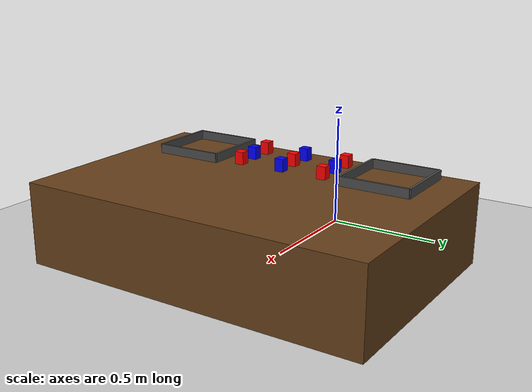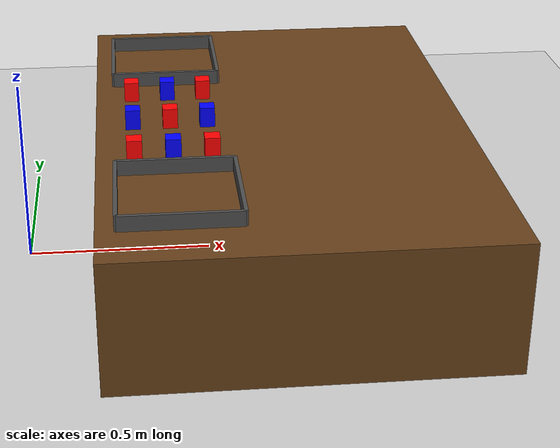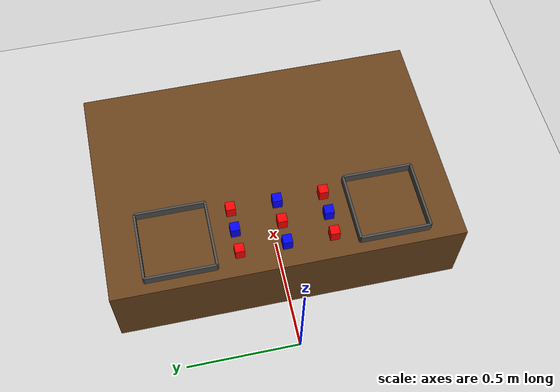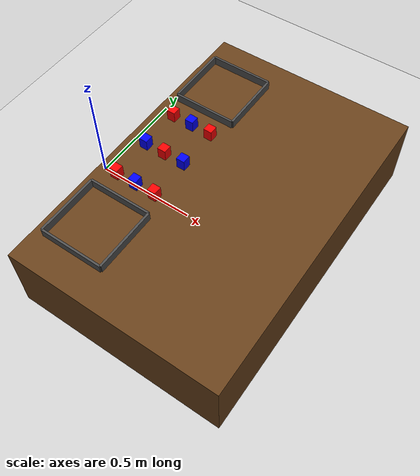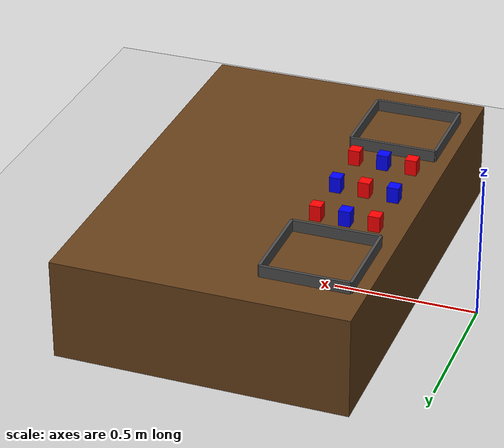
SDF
<?xml version="1.0" ?>
<sdf version="1.8">
  <world name="sorting_world">
    <plugin filename="libgz-sim-physics-system.so" name="gz::sim::systems::Physics" />
    <plugin filename="libgz-sim-user-commands-system.so" name="gz::sim::systems::UserCommands" />
    <plugin filename="libgz-sim-scene-broadcaster-system.so" name="gz::sim::systems::SceneBroadcaster" />
    <plugin filename="libgz-sim-sensors-system.so" name="gz::sim::systems::Sensors">
      <render_engine>ogre2</render_engine>
    </plugin>

    <physics name="1ms" type="ignored">
      <max_step_size>0.001</max_step_size>
      <real_time_factor>1.0</real_time_factor>
    </physics>

    <include>
      <uri>https://fuel.gazebosim.org/1.0/OpenRobotics/models/Sun</uri>
    </include>
    <include>
      <uri>https://fuel.gazebosim.org/1.0/OpenRobotics/models/Ground Plane</uri>
    </include>

    <!-- Table -->
    <model name="table">
      <static>true</static>
      <pose>0.7 0 0.2 0 0 0</pose>
      <link name="link">
        <collision name="collision">
          <geometry><box><size>1.0 1.5 0.35</size></box></geometry>
        </collision>
        <visual name="visual">
          <geometry><box><size>1.0 1.5 0.35</size></box></geometry>
          <material>
            <ambient>0.4 0.25 0.1 1</ambient>
            <diffuse>0.4 0.25 0.1 1</diffuse>
          </material>
        </visual>
      </link>
    </model>

    <!-- Containers -->
    <model name="red_container">
      <static>true</static>
      <pose>0.40 0.45 0.375 0 0 0</pose>
      <link name="link">
        <visual name="wall_front_v"><pose>0.15 0 0.02 0 0 0</pose><geometry><box><size>0.01 0.3 0.04</size></box></geometry><material><ambient>0.3 0.3 0.3 1</ambient><diffuse>0.3 0.3 0.3 1</diffuse></material></visual>
        <collision name="wall_front_c"><pose>0.15 0 0.02 0 0 0</pose><geometry><box><size>0.01 0.3 0.04</size></box></geometry></collision>
        <visual name="wall_back_v"><pose>-0.15 0 0.02 0 0 0</pose><geometry><box><size>0.01 0.3 0.04</size></box></geometry><material><ambient>0.3 0.3 0.3 1</ambient><diffuse>0.3 0.3 0.3 1</diffuse></material></visual>
        <collision name="wall_back_c"><pose>-0.15 0 0.02 0 0 0</pose><geometry><box><size>0.01 0.3 0.04</size></box></geometry></collision>
        <visual name="wall_left_v"><pose>0 0.15 0.02 0 0 0</pose><geometry><box><size>0.3 0.01 0.04</size></box></geometry><material><ambient>0.3 0.3 0.3 1</ambient><diffuse>0.3 0.3 0.3 1</diffuse></material></visual>
        <collision name="wall_left_c"><pose>0 0.15 0.02 0 0 0</pose><geometry><box><size>0.3 0.01 0.04</size></box></geometry></collision>
        <visual name="wall_right_v"><pose>0 -0.15 0.02 0 0 0</pose><geometry><box><size>0.3 0.01 0.04</size></box></geometry><material><ambient>0.3 0.3 0.3 1</ambient><diffuse>0.3 0.3 0.3 1</diffuse></material></visual>
        <collision name="wall_right_c"><pose>0 -0.15 0.02 0 0 0</pose><geometry><box><size>0.3 0.01 0.04</size></box></geometry></collision>
      </link>
    </model>

    <model name="blue_container">
      <static>true</static>
      <pose>0.40 -0.45 0.375 0 0 0</pose>
      <link name="link">
        <visual name="wall_front_v"><pose>0.15 0 0.02 0 0 0</pose><geometry><box><size>0.01 0.3 0.04</size></box></geometry><material><ambient>0.3 0.3 0.3 1</ambient><diffuse>0.3 0.3 0.3 1</diffuse></material></visual>
        <collision name="wall_front_c"><pose>0.15 0 0.02 0 0 0</pose><geometry><box><size>0.01 0.3 0.04</size></box></geometry></collision>
        <visual name="wall_back_v"><pose>-0.15 0 0.02 0 0 0</pose><geometry><box><size>0.01 0.3 0.04</size></box></geometry><material><ambient>0.3 0.3 0.3 1</ambient><diffuse>0.3 0.3 0.3 1</diffuse></material></visual>
        <collision name="wall_back_c"><pose>-0.15 0 0.02 0 0 0</pose><geometry><box><size>0.01 0.3 0.04</size></box></geometry></collision>
        <visual name="wall_left_v"><pose>0 0.15 0.02 0 0 0</pose><geometry><box><size>0.3 0.01 0.04</size></box></geometry><material><ambient>0.3 0.3 0.3 1</ambient><diffuse>0.3 0.3 0.3 1</diffuse></material></visual>
        <collision name="wall_left_c"><pose>0 0.15 0.02 0 0 0</pose><geometry><box><size>0.3 0.01 0.04</size></box></geometry></collision>
        <visual name="wall_right_v"><pose>0 -0.15 0.02 0 0 0</pose><geometry><box><size>0.3 0.01 0.04</size></box></geometry><material><ambient>0.3 0.3 0.3 1</ambient><diffuse>0.3 0.3 0.3 1</diffuse></material></visual>
        <collision name="wall_right_c"><pose>0 -0.15 0.02 0 0 0</pose><geometry><box><size>0.3 0.01 0.04</size></box></geometry></collision>
      </link>
    </model>

    <!-- Row 1 (X=0.3) -->
    <model name="red_block1"><pose>0.3 -0.2 0.40 0 0 0</pose><link name="link"><inertial><mass>0.05</mass><inertia><ixx>0.000013</ixx><iyy>0.000013</iyy><izz>0.000013</izz></inertia></inertial><collision name="collision"><geometry><box><size>0.04 0.04 0.06</size></box></geometry></collision><visual name="visual"><geometry><box><size>0.04 0.04 0.06</size></box></geometry><material><ambient>1 0 0 1</ambient><diffuse>1 0 0 1</diffuse></material></visual></link></model>
    <model name="blue_block1"><pose>0.3 0 0.40 0 0 0</pose><link name="link"><inertial><mass>0.05</mass><inertia><ixx>0.000013</ixx><iyy>0.000013</iyy><izz>0.000013</izz></inertia></inertial><collision name="collision"><geometry><box><size>0.04 0.04 0.06</size></box></geometry></collision><visual name="visual"><geometry><box><size>0.04 0.04 0.06</size></box></geometry><material><ambient>0 0 1 1</ambient><diffuse>0 0 1 1</diffuse></material></visual></link></model>
    <model name="red_block2"><pose>0.3 0.2 0.40 0 0 0</pose><link name="link"><inertial><mass>0.05</mass><inertia><ixx>0.000013</ixx><iyy>0.000013</iyy><izz>0.000013</izz></inertia></inertial><collision name="collision"><geometry><box><size>0.04 0.04 0.06</size></box></geometry></collision><visual name="visual"><geometry><box><size>0.04 0.04 0.06</size></box></geometry><material><ambient>1 0 0 1</ambient><diffuse>1 0 0 1</diffuse></material></visual></link></model>

    <!-- Row 2 (X=0.4) -->
    <model name="blue_block2"><pose>0.4 -0.2 0.40 0 0 0</pose><link name="link"><inertial><mass>0.05</mass><inertia><ixx>0.000013</ixx><iyy>0.000013</iyy><izz>0.000013</izz></inertia></inertial><collision name="collision"><geometry><box><size>0.04 0.04 0.06</size></box></geometry></collision><visual name="visual"><geometry><box><size>0.04 0.04 0.06</size></box></geometry><material><ambient>0 0 1 1</ambient><diffuse>0 0 1 1</diffuse></material></visual></link></model>
    <model name="red_block3"><pose>0.4 0 0.40 0 0 0</pose><link name="link"><inertial><mass>0.05</mass><inertia><ixx>0.000013</ixx><iyy>0.000013</iyy><izz>0.000013</izz></inertia></inertial><collision name="collision"><geometry><box><size>0.04 0.04 0.06</size></box></geometry></collision><visual name="visual"><geometry><box><size>0.04 0.04 0.06</size></box></geometry><material><ambient>1 0 0 1</ambient><diffuse>1 0 0 1</diffuse></material></visual></link></model>
    <model name="blue_block3"><pose>0.4 0.2 0.40 0 0 0</pose><link name="link"><inertial><mass>0.05</mass><inertia><ixx>0.000013</ixx><iyy>0.000013</iyy><izz>0.000013</izz></inertia></inertial><collision name="collision"><geometry><box><size>0.04 0.04 0.06</size></box></geometry></collision><visual name="visual"><geometry><box><size>0.04 0.04 0.06</size></box></geometry><material><ambient>0 0 1 1</ambient><diffuse>0 0 1 1</diffuse></material></visual></link></model>

    <!-- Row 3 (X=0.5) -->
    <model name="red_block4">
      <pose>0.5 -0.2 0.40 0 0 0</pose>
      <link name="link">
        <inertial><mass>0.05</mass><inertia><ixx>0.000013</ixx><iyy>0.000013</iyy><izz>0.000013</izz></inertia></inertial>
        <collision name="collision"><geometry><box><size>0.04 0.04 0.06</size></box></geometry></collision>
        <visual name="visual">
          <geometry><box><size>0.04 0.04 0.06</size></box></geometry>
          <material><ambient>1 0 0 1</ambient><diffuse>1 0 0 1</diffuse></material>
        </visual>
      </link>
    </model>
    <model name="blue_block4">
      <pose>0.5 0 0.40 0 0 0</pose>
      <link name="link">
        <inertial><mass>0.05</mass><inertia><ixx>0.000013</ixx><iyy>0.000013</iyy><izz>0.000013</izz></inertia></inertial>
        <collision name="collision"><geometry><box><size>0.04 0.04 0.06</size></box></geometry></collision>
        <visual name="visual">
          <geometry><box><size>0.04 0.04 0.06</size></box></geometry>
          <material><ambient>0 0 1 1</ambient><diffuse>0 0 1 1</diffuse></material>
        </visual>
      </link>
    </model>
    <model name="red_block5">
      <pose>0.5 0.2 0.40 0 0 0</pose>
      <link name="link">
        <inertial><mass>0.05</mass><inertia><ixx>0.000013</ixx><iyy>0.000013</iyy><izz>0.000013</izz></inertia></inertial>
        <collision name="collision"><geometry><box><size>0.04 0.04 0.06</size></box></geometry></collision>
        <visual name="visual">
          <geometry><box><size>0.04 0.04 0.06</size></box></geometry>
          <material><ambient>1 0 0 1</ambient><diffuse>1 0 0 1</diffuse></material>
        </visual>
      </link>
    </model>

  </world>
</sdf>
